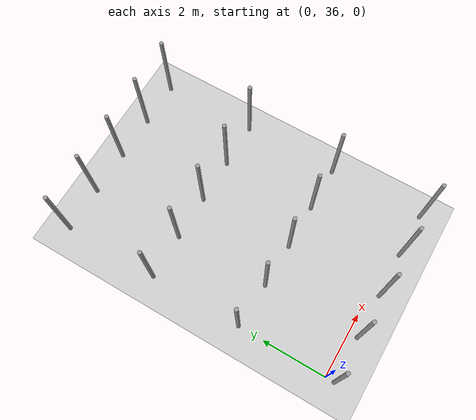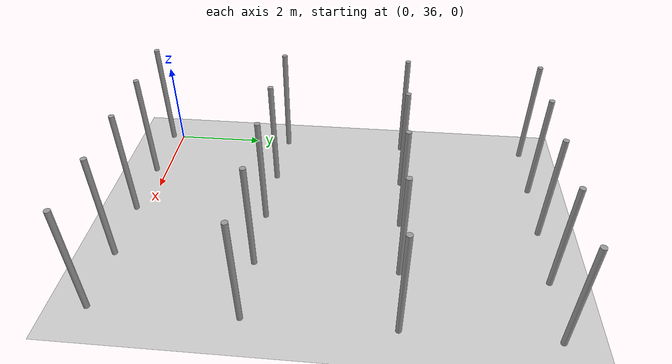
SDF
<sdf version="1.6">
 <world name="default">
  <model name="ground_plane">
   <static>1</static>
   <link name="link">
    <collision name="collision">
     <geometry><plane><normal>0 0 1</normal><size>100 100</size></plane></geometry>
     <surface><friction><ode><mu>100</mu><mu2>50</mu2></ode></friction></surface>
    </collision>
    <visual name="visual">
     <cast_shadows>0</cast_shadows>
     <geometry><plane><normal>0 0 1</normal><size>100 100</size></plane></geometry>
     <material>
      <script><uri>file://media/materials/scripts/gazebo.material</uri><name>Gazebo/Grey</name></script>
     </material>
    </visual>
   </link>
  </model>
  <model name="pole_58">
   <link name="link_0">
    <inertial>
     <mass>0.0364582</mass>
     <inertia>
      <ixx>0.00312124</ixx>
      <ixy>0</ixy>
      <ixz>0</ixz>
      <iyy>0.00312124</iyy>
      <iyz>0</iyz>
      <izz>0.00016615</izz>
     </inertia>
    </inertial>
    <visual name="visual">
     <geometry><cylinder><radius>0.06</radius><length>2.5</length></cylinder></geometry>
     <material>
      <lighting>1</lighting>
      <script><uri>file://media/materials/scripts/gazebo.material</uri><name>Gazebo/Grey</name></script>
      <ambient>0.3 0.3 0.3 1</ambient>
      <diffuse>0.7 0.7 0.7 1</diffuse>
      <specular>0.01 0.01 0.01 1</specular>
      <emissive>0 0 0 1</emissive>
      <shader type="vertex"><normal_map>__default__</normal_map></shader>
     </material>
    </visual>
    <collision name="collision">
     <geometry><cylinder><radius>0.06</radius><length>2.5</length></cylinder></geometry>
     <surface>
      <friction>
       <ode><mu>1</mu><mu2>1</mu2><fdir1>0 0 0</fdir1><slip1>0</slip1><slip2>0</slip2></ode>
       <torsional>
        <coefficient>1</coefficient>
        <patch_radius>0</patch_radius>
        <surface_radius>0</surface_radius>
        <use_patch_radius>1</use_patch_radius>
        <ode><slip>0</slip></ode>
       </torsional>
      </friction>
      <bounce><restitution_coefficient>0</restitution_coefficient><threshold>1e+06</threshold></bounce>
      <contact>
       <collide_without_contact>0</collide_without_contact>
       <collide_without_contact_bitmask>1</collide_without_contact_bitmask>
       <collide_bitmask>1</collide_bitmask>
       <ode>
        <soft_cfm>0</soft_cfm>
        <soft_erp>0.2</soft_erp>
        <kp>1e+13</kp>
        <kd>1</kd>
        <max_vel>0.01</max_vel>
        <min_depth>0</min_depth>
       </ode>
       <bullet>
        <split_impulse>1</split_impulse>
        <split_impulse_penetration_threshold>-0.01</split_impulse_penetration_threshold>
        <soft_cfm>0</soft_cfm>
        <soft_erp>0.2</soft_erp>
        <kp>1e+13</kp>
        <kd>1</kd>
       </bullet>
      </contact>
     </surface>
    </collision>
   </link>
   <static>0</static>
   <pose>0.000145 35.741 1.24999 0 1e-06 -0.011915</pose>
  </model>
  <model name="pole_59">
   <link name="link_0">
    <inertial>
     <mass>0.0364582</mass>
     <inertia>
      <ixx>0.00312124</ixx>
      <ixy>0</ixy>
      <ixz>0</ixz>
      <iyy>0.00312124</iyy>
      <iyz>0</iyz>
      <izz>0.00016615</izz>
     </inertia>
    </inertial>
    <visual name="visual">
     <geometry><cylinder><radius>0.06</radius><length>2.5</length></cylinder></geometry>
     <material>
      <lighting>1</lighting>
      <script><uri>file://media/materials/scripts/gazebo.material</uri><name>Gazebo/Grey</name></script>
      <ambient>0.3 0.3 0.3 1</ambient>
      <diffuse>0.7 0.7 0.7 1</diffuse>
      <specular>0.01 0.01 0.01 1</specular>
      <emissive>0 0 0 1</emissive>
      <shader type="vertex"><normal_map>__default__</normal_map></shader>
     </material>
    </visual>
    <collision name="collision">
     <geometry><cylinder><radius>0.06</radius><length>2.5</length></cylinder></geometry>
     <surface>
      <friction>
       <ode><mu>1</mu><mu2>1</mu2><fdir1>0 0 0</fdir1><slip1>0</slip1><slip2>0</slip2></ode>
       <torsional>
        <coefficient>1</coefficient>
        <patch_radius>0</patch_radius>
        <surface_radius>0</surface_radius>
        <use_patch_radius>1</use_patch_radius>
        <ode><slip>0</slip></ode>
       </torsional>
      </friction>
      <bounce><restitution_coefficient>0</restitution_coefficient><threshold>1e+06</threshold></bounce>
      <contact>
       <collide_without_contact>0</collide_without_contact>
       <collide_without_contact_bitmask>1</collide_without_contact_bitmask>
       <collide_bitmask>1</collide_bitmask>
       <ode>
        <soft_cfm>0</soft_cfm>
        <soft_erp>0.2</soft_erp>
        <kp>1e+13</kp>
        <kd>1</kd>
        <max_vel>0.01</max_vel>
        <min_depth>0</min_depth>
       </ode>
       <bullet>
        <split_impulse>1</split_impulse>
        <split_impulse_penetration_threshold>-0.01</split_impulse_penetration_threshold>
        <soft_cfm>0</soft_cfm>
        <soft_erp>0.2</soft_erp>
        <kp>1e+13</kp>
        <kd>1</kd>
       </bullet>
      </contact>
     </surface>
    </collision>
   </link>
   <static>0</static>
   <pose>1.40914 35.7372 1.25 0 2e-06 0.097629</pose>
  </model>
  <model name="pole_60">
   <link name="link_0">
    <inertial>
     <mass>0.0364582</mass>
     <inertia>
      <ixx>0.00312124</ixx>
      <ixy>0</ixy>
      <ixz>0</ixz>
      <iyy>0.00312124</iyy>
      <iyz>0</iyz>
      <izz>0.00016615</izz>
     </inertia>
    </inertial>
    <visual name="visual">
     <geometry><cylinder><radius>0.06</radius><length>2.5</length></cylinder></geometry>
     <material>
      <lighting>1</lighting>
      <script><uri>file://media/materials/scripts/gazebo.material</uri><name>Gazebo/Grey</name></script>
      <ambient>0.3 0.3 0.3 1</ambient>
      <diffuse>0.7 0.7 0.7 1</diffuse>
      <specular>0.01 0.01 0.01 1</specular>
      <emissive>0 0 0 1</emissive>
      <shader type="vertex"><normal_map>__default__</normal_map></shader>
     </material>
    </visual>
    <collision name="collision">
     <geometry><cylinder><radius>0.06</radius><length>2.5</length></cylinder></geometry>
     <surface>
      <friction>
       <ode><mu>1</mu><mu2>1</mu2><fdir1>0 0 0</fdir1><slip1>0</slip1><slip2>0</slip2></ode>
       <torsional>
        <coefficient>1</coefficient>
        <patch_radius>0</patch_radius>
        <surface_radius>0</surface_radius>
        <use_patch_radius>1</use_patch_radius>
        <ode><slip>0</slip></ode>
       </torsional>
      </friction>
      <bounce><restitution_coefficient>0</restitution_coefficient><threshold>1e+06</threshold></bounce>
      <contact>
       <collide_without_contact>0</collide_without_contact>
       <collide_without_contact_bitmask>1</collide_without_contact_bitmask>
       <collide_bitmask>1</collide_bitmask>
       <ode>
        <soft_cfm>0</soft_cfm>
        <soft_erp>0.2</soft_erp>
        <kp>1e+13</kp>
        <kd>1</kd>
        <max_vel>0.01</max_vel>
        <min_depth>0</min_depth>
       </ode>
       <bullet>
        <split_impulse>1</split_impulse>
        <split_impulse_penetration_threshold>-0.01</split_impulse_penetration_threshold>
        <soft_cfm>0</soft_cfm>
        <soft_erp>0.2</soft_erp>
        <kp>1e+13</kp>
        <kd>1</kd>
       </bullet>
      </contact>
     </surface>
    </collision>
   </link>
   <static>0</static>
   <pose>2.80017 35.7211 1.25 -0 -1e-06 -0.014316</pose>
  </model>
  <model name="pole_61">
   <link name="link_0">
    <inertial>
     <mass>0.0364582</mass>
     <inertia>
      <ixx>0.00312124</ixx>
      <ixy>0</ixy>
      <ixz>0</ixz>
      <iyy>0.00312124</iyy>
      <iyz>0</iyz>
      <izz>0.00016615</izz>
     </inertia>
    </inertial>
    <visual name="visual">
     <geometry><cylinder><radius>0.06</radius><length>2.5</length></cylinder></geometry>
     <material>
      <lighting>1</lighting>
      <script><uri>file://media/materials/scripts/gazebo.material</uri><name>Gazebo/Grey</name></script>
      <ambient>0.3 0.3 0.3 1</ambient>
      <diffuse>0.7 0.7 0.7 1</diffuse>
      <specular>0.01 0.01 0.01 1</specular>
      <emissive>0 0 0 1</emissive>
      <shader type="vertex"><normal_map>__default__</normal_map></shader>
     </material>
    </visual>
    <collision name="collision">
     <geometry><cylinder><radius>0.06</radius><length>2.5</length></cylinder></geometry>
     <surface>
      <friction>
       <ode><mu>1</mu><mu2>1</mu2><fdir1>0 0 0</fdir1><slip1>0</slip1><slip2>0</slip2></ode>
       <torsional>
        <coefficient>1</coefficient>
        <patch_radius>0</patch_radius>
        <surface_radius>0</surface_radius>
        <use_patch_radius>1</use_patch_radius>
        <ode><slip>0</slip></ode>
       </torsional>
      </friction>
      <bounce><restitution_coefficient>0</restitution_coefficient><threshold>1e+06</threshold></bounce>
      <contact>
       <collide_without_contact>0</collide_without_contact>
       <collide_without_contact_bitmask>1</collide_without_contact_bitmask>
       <collide_bitmask>1</collide_bitmask>
       <ode>
        <soft_cfm>0</soft_cfm>
        <soft_erp>0.2</soft_erp>
        <kp>1e+13</kp>
        <kd>1</kd>
        <max_vel>0.01</max_vel>
        <min_depth>0</min_depth>
       </ode>
       <bullet>
        <split_impulse>1</split_impulse>
        <split_impulse_penetration_threshold>-0.01</split_impulse_penetration_threshold>
        <soft_cfm>0</soft_cfm>
        <soft_erp>0.2</soft_erp>
        <kp>1e+13</kp>
        <kd>1</kd>
       </bullet>
      </contact>
     </surface>
    </collision>
   </link>
   <static>0</static>
   <pose>4.20055 35.7412 1.25 -1e-06 1e-06 -0.001491</pose>
  </model>
  <model name="pole_62">
   <link name="link_0">
    <inertial>
     <mass>0.0364582</mass>
     <inertia>
      <ixx>0.00312124</ixx>
      <ixy>0</ixy>
      <ixz>0</ixz>
      <iyy>0.00312124</iyy>
      <iyz>0</iyz>
      <izz>0.00016615</izz>
     </inertia>
    </inertial>
    <visual name="visual">
     <geometry><cylinder><radius>0.06</radius><length>2.5</length></cylinder></geometry>
     <material>
      <lighting>1</lighting>
      <script><uri>file://media/materials/scripts/gazebo.material</uri><name>Gazebo/Grey</name></script>
      <ambient>0.3 0.3 0.3 1</ambient>
      <diffuse>0.7 0.7 0.7 1</diffuse>
      <specular>0.01 0.01 0.01 1</specular>
      <emissive>0 0 0 1</emissive>
      <shader type="vertex"><normal_map>__default__</normal_map></shader>
     </material>
    </visual>
    <collision name="collision">
     <geometry><cylinder><radius>0.06</radius><length>2.5</length></cylinder></geometry>
     <surface>
      <friction>
       <ode><mu>1</mu><mu2>1</mu2><fdir1>0 0 0</fdir1><slip1>0</slip1><slip2>0</slip2></ode>
       <torsional>
        <coefficient>1</coefficient>
        <patch_radius>0</patch_radius>
        <surface_radius>0</surface_radius>
        <use_patch_radius>1</use_patch_radius>
        <ode><slip>0</slip></ode>
       </torsional>
      </friction>
      <bounce><restitution_coefficient>0</restitution_coefficient><threshold>1e+06</threshold></bounce>
      <contact>
       <collide_without_contact>0</collide_without_contact>
       <collide_without_contact_bitmask>1</collide_without_contact_bitmask>
       <collide_bitmask>1</collide_bitmask>
       <ode>
        <soft_cfm>0</soft_cfm>
        <soft_erp>0.2</soft_erp>
        <kp>1e+13</kp>
        <kd>1</kd>
        <max_vel>0.01</max_vel>
        <min_depth>0</min_depth>
       </ode>
       <bullet>
        <split_impulse>1</split_impulse>
        <split_impulse_penetration_threshold>-0.01</split_impulse_penetration_threshold>
        <soft_cfm>0</soft_cfm>
        <soft_erp>0.2</soft_erp>
        <kp>1e+13</kp>
        <kd>1</kd>
       </bullet>
      </contact>
     </surface>
    </collision>
   </link>
   <static>0</static>
   <pose>5.60013 35.7209 1.24999 -1e-06 1e-06 -0.011618</pose>
  </model>
  <model name="pole_63">
   <link name="link_0">
    <inertial>
     <mass>0.0364582</mass>
     <inertia>
      <ixx>0.00312124</ixx>
      <ixy>0</ixy>
      <ixz>0</ixz>
      <iyy>0.00312124</iyy>
      <iyz>0</iyz>
      <izz>0.00016615</izz>
     </inertia>
    </inertial>
    <visual name="visual">
     <geometry><cylinder><radius>0.06</radius><length>2.5</length></cylinder></geometry>
     <material>
      <lighting>1</lighting>
      <script><uri>file://media/materials/scripts/gazebo.material</uri><name>Gazebo/Grey</name></script>
      <ambient>0.3 0.3 0.3 1</ambient>
      <diffuse>0.7 0.7 0.7 1</diffuse>
      <specular>0.01 0.01 0.01 1</specular>
      <emissive>0 0 0 1</emissive>
      <shader type="vertex"><normal_map>__default__</normal_map></shader>
     </material>
    </visual>
    <collision name="collision">
     <geometry><cylinder><radius>0.06</radius><length>2.5</length></cylinder></geometry>
     <surface>
      <friction>
       <ode><mu>1</mu><mu2>1</mu2><fdir1>0 0 0</fdir1><slip1>0</slip1><slip2>0</slip2></ode>
       <torsional>
        <coefficient>1</coefficient>
        <patch_radius>0</patch_radius>
        <surface_radius>0</surface_radius>
        <use_patch_radius>1</use_patch_radius>
        <ode><slip>0</slip></ode>
       </torsional>
      </friction>
      <bounce><restitution_coefficient>0</restitution_coefficient><threshold>1e+06</threshold></bounce>
      <contact>
       <collide_without_contact>0</collide_without_contact>
       <collide_without_contact_bitmask>1</collide_without_contact_bitmask>
       <collide_bitmask>1</collide_bitmask>
       <ode>
        <soft_cfm>0</soft_cfm>
        <soft_erp>0.2</soft_erp>
        <kp>1e+13</kp>
        <kd>1</kd>
        <max_vel>0.01</max_vel>
        <min_depth>0</min_depth>
       </ode>
       <bullet>
        <split_impulse>1</split_impulse>
        <split_impulse_penetration_threshold>-0.01</split_impulse_penetration_threshold>
        <soft_cfm>0</soft_cfm>
        <soft_erp>0.2</soft_erp>
        <kp>1e+13</kp>
        <kd>1</kd>
       </bullet>
      </contact>
     </surface>
    </collision>
   </link>
   <static>0</static>
   <pose>-0.006738 38.8032 1.2507 -0.001142 -0.01346 -0.34916</pose>
  </model>
  <model name="pole_64">
   <link name="link_0">
    <inertial>
     <mass>0.0364582</mass>
     <inertia>
      <ixx>0.00312124</ixx>
      <ixy>0</ixy>
      <ixz>0</ixz>
      <iyy>0.00312124</iyy>
      <iyz>0</iyz>
      <izz>0.00016615</izz>
     </inertia>
    </inertial>
    <visual name="visual">
     <geometry><cylinder><radius>0.06</radius><length>2.5</length></cylinder></geometry>
     <material>
      <lighting>1</lighting>
      <script><uri>file://media/materials/scripts/gazebo.material</uri><name>Gazebo/Grey</name></script>
      <ambient>0.3 0.3 0.3 1</ambient>
      <diffuse>0.7 0.7 0.7 1</diffuse>
      <specular>0.01 0.01 0.01 1</specular>
      <emissive>0 0 0 1</emissive>
      <shader type="vertex"><normal_map>__default__</normal_map></shader>
     </material>
    </visual>
    <collision name="collision">
     <geometry><cylinder><radius>0.06</radius><length>2.5</length></cylinder></geometry>
     <surface>
      <friction>
       <ode><mu>1</mu><mu2>1</mu2><fdir1>0 0 0</fdir1><slip1>0</slip1><slip2>0</slip2></ode>
       <torsional>
        <coefficient>1</coefficient>
        <patch_radius>0</patch_radius>
        <surface_radius>0</surface_radius>
        <use_patch_radius>1</use_patch_radius>
        <ode><slip>0</slip></ode>
       </torsional>
      </friction>
      <bounce><restitution_coefficient>0</restitution_coefficient><threshold>1e+06</threshold></bounce>
      <contact>
       <collide_without_contact>0</collide_without_contact>
       <collide_without_contact_bitmask>1</collide_without_contact_bitmask>
       <collide_bitmask>1</collide_bitmask>
       <ode>
        <soft_cfm>0</soft_cfm>
        <soft_erp>0.2</soft_erp>
        <kp>1e+13</kp>
        <kd>1</kd>
        <max_vel>0.01</max_vel>
        <min_depth>0</min_depth>
       </ode>
       <bullet>
        <split_impulse>1</split_impulse>
        <split_impulse_penetration_threshold>-0.01</split_impulse_penetration_threshold>
        <soft_cfm>0</soft_cfm>
        <soft_erp>0.2</soft_erp>
        <kp>1e+13</kp>
        <kd>1</kd>
       </bullet>
      </contact>
     </surface>
    </collision>
   </link>
   <static>0</static>
   <pose>9.3e-05 41.6806 1.24999 0 -1e-06 -0.011945</pose>
  </model>
  <model name="pole_65">
   <link name="link_0">
    <inertial>
     <mass>0.0364582</mass>
     <inertia>
      <ixx>0.00312124</ixx>
      <ixy>0</ixy>
      <ixz>0</ixz>
      <iyy>0.00312124</iyy>
      <iyz>0</iyz>
      <izz>0.00016615</izz>
     </inertia>
    </inertial>
    <visual name="visual">
     <geometry><cylinder><radius>0.06</radius><length>2.5</length></cylinder></geometry>
     <material>
      <lighting>1</lighting>
      <script><uri>file://media/materials/scripts/gazebo.material</uri><name>Gazebo/Grey</name></script>
      <ambient>0.3 0.3 0.3 1</ambient>
      <diffuse>0.7 0.7 0.7 1</diffuse>
      <specular>0.01 0.01 0.01 1</specular>
      <emissive>0 0 0 1</emissive>
      <shader type="vertex"><normal_map>__default__</normal_map></shader>
     </material>
    </visual>
    <collision name="collision">
     <geometry><cylinder><radius>0.06</radius><length>2.5</length></cylinder></geometry>
     <surface>
      <friction>
       <ode><mu>1</mu><mu2>1</mu2><fdir1>0 0 0</fdir1><slip1>0</slip1><slip2>0</slip2></ode>
       <torsional>
        <coefficient>1</coefficient>
        <patch_radius>0</patch_radius>
        <surface_radius>0</surface_radius>
        <use_patch_radius>1</use_patch_radius>
        <ode><slip>0</slip></ode>
       </torsional>
      </friction>
      <bounce><restitution_coefficient>0</restitution_coefficient><threshold>1e+06</threshold></bounce>
      <contact>
       <collide_without_contact>0</collide_without_contact>
       <collide_without_contact_bitmask>1</collide_without_contact_bitmask>
       <collide_bitmask>1</collide_bitmask>
       <ode>
        <soft_cfm>0</soft_cfm>
        <soft_erp>0.2</soft_erp>
        <kp>1e+13</kp>
        <kd>1</kd>
        <max_vel>0.01</max_vel>
        <min_depth>0</min_depth>
       </ode>
       <bullet>
        <split_impulse>1</split_impulse>
        <split_impulse_penetration_threshold>-0.01</split_impulse_penetration_threshold>
        <soft_cfm>0</soft_cfm>
        <soft_erp>0.2</soft_erp>
        <kp>1e+13</kp>
        <kd>1</kd>
       </bullet>
      </contact>
     </surface>
    </collision>
   </link>
   <static>0</static>
   <pose>1.39976 41.6806 1.24999 -1e-06 -2e-06 -0.075097</pose>
  </model>
  <model name="pole_66">
   <link name="link_0">
    <inertial>
     <mass>0.0364582</mass>
     <inertia>
      <ixx>0.00312124</ixx>
      <ixy>0</ixy>
      <ixz>0</ixz>
      <iyy>0.00312124</iyy>
      <iyz>0</iyz>
      <izz>0.00016615</izz>
     </inertia>
    </inertial>
    <visual name="visual">
     <geometry><cylinder><radius>0.06</radius><length>2.5</length></cylinder></geometry>
     <material>
      <lighting>1</lighting>
      <script><uri>file://media/materials/scripts/gazebo.material</uri><name>Gazebo/Grey</name></script>
      <ambient>0.3 0.3 0.3 1</ambient>
      <diffuse>0.7 0.7 0.7 1</diffuse>
      <specular>0.01 0.01 0.01 1</specular>
      <emissive>0 0 0 1</emissive>
      <shader type="vertex"><normal_map>__default__</normal_map></shader>
     </material>
    </visual>
    <collision name="collision">
     <geometry><cylinder><radius>0.06</radius><length>2.5</length></cylinder></geometry>
     <surface>
      <friction>
       <ode><mu>1</mu><mu2>1</mu2><fdir1>0 0 0</fdir1><slip1>0</slip1><slip2>0</slip2></ode>
       <torsional>
        <coefficient>1</coefficient>
        <patch_radius>0</patch_radius>
        <surface_radius>0</surface_radius>
        <use_patch_radius>1</use_patch_radius>
        <ode><slip>0</slip></ode>
       </torsional>
      </friction>
      <bounce><restitution_coefficient>0</restitution_coefficient><threshold>1e+06</threshold></bounce>
      <contact>
       <collide_without_contact>0</collide_without_contact>
       <collide_without_contact_bitmask>1</collide_without_contact_bitmask>
       <collide_bitmask>1</collide_bitmask>
       <ode>
        <soft_cfm>0</soft_cfm>
        <soft_erp>0.2</soft_erp>
        <kp>1e+13</kp>
        <kd>1</kd>
        <max_vel>0.01</max_vel>
        <min_depth>0</min_depth>
       </ode>
       <bullet>
        <split_impulse>1</split_impulse>
        <split_impulse_penetration_threshold>-0.01</split_impulse_penetration_threshold>
        <soft_cfm>0</soft_cfm>
        <soft_erp>0.2</soft_erp>
        <kp>1e+13</kp>
        <kd>1</kd>
       </bullet>
      </contact>
     </surface>
    </collision>
   </link>
   <static>0</static>
   <pose>1.40922 38.7199 1.24999 -1e-06 -1e-06 -0.009136</pose>
  </model>
  <model name="pole_67">
   <link name="link_0">
    <inertial>
     <mass>0.0364582</mass>
     <inertia>
      <ixx>0.00312124</ixx>
      <ixy>0</ixy>
      <ixz>0</ixz>
      <iyy>0.00312124</iyy>
      <iyz>0</iyz>
      <izz>0.00016615</izz>
     </inertia>
    </inertial>
    <visual name="visual">
     <geometry><cylinder><radius>0.06</radius><length>2.5</length></cylinder></geometry>
     <material>
      <lighting>1</lighting>
      <script><uri>file://media/materials/scripts/gazebo.material</uri><name>Gazebo/Grey</name></script>
      <ambient>0.3 0.3 0.3 1</ambient>
      <diffuse>0.7 0.7 0.7 1</diffuse>
      <specular>0.01 0.01 0.01 1</specular>
      <emissive>0 0 0 1</emissive>
      <shader type="vertex"><normal_map>__default__</normal_map></shader>
     </material>
    </visual>
    <collision name="collision">
     <geometry><cylinder><radius>0.06</radius><length>2.5</length></cylinder></geometry>
     <surface>
      <friction>
       <ode><mu>1</mu><mu2>1</mu2><fdir1>0 0 0</fdir1><slip1>0</slip1><slip2>0</slip2></ode>
       <torsional>
        <coefficient>1</coefficient>
        <patch_radius>0</patch_radius>
        <surface_radius>0</surface_radius>
        <use_patch_radius>1</use_patch_radius>
        <ode><slip>0</slip></ode>
       </torsional>
      </friction>
      <bounce><restitution_coefficient>0</restitution_coefficient><threshold>1e+06</threshold></bounce>
      <contact>
       <collide_without_contact>0</collide_without_contact>
       <collide_without_contact_bitmask>1</collide_without_contact_bitmask>
       <collide_bitmask>1</collide_bitmask>
       <ode>
        <soft_cfm>0</soft_cfm>
        <soft_erp>0.2</soft_erp>
        <kp>1e+13</kp>
        <kd>1</kd>
        <max_vel>0.01</max_vel>
        <min_depth>0</min_depth>
       </ode>
       <bullet>
        <split_impulse>1</split_impulse>
        <split_impulse_penetration_threshold>-0.01</split_impulse_penetration_threshold>
        <soft_cfm>0</soft_cfm>
        <soft_erp>0.2</soft_erp>
        <kp>1e+13</kp>
        <kd>1</kd>
       </bullet>
      </contact>
     </surface>
    </collision>
   </link>
   <static>0</static>
   <pose>4.20006 41.6805 1.24999 0 -1e-06 -0.009459</pose>
  </model>
  <model name="pole_68">
   <link name="link_0">
    <inertial>
     <mass>0.0364582</mass>
     <inertia>
      <ixx>0.00312124</ixx>
      <ixy>0</ixy>
      <ixz>0</ixz>
      <iyy>0.00312124</iyy>
      <iyz>0</iyz>
      <izz>0.00016615</izz>
     </inertia>
    </inertial>
    <visual name="visual">
     <geometry><cylinder><radius>0.06</radius><length>2.5</length></cylinder></geometry>
     <material>
      <lighting>1</lighting>
      <script><uri>file://media/materials/scripts/gazebo.material</uri><name>Gazebo/Grey</name></script>
      <ambient>0.3 0.3 0.3 1</ambient>
      <diffuse>0.7 0.7 0.7 1</diffuse>
      <specular>0.01 0.01 0.01 1</specular>
      <emissive>0 0 0 1</emissive>
      <shader type="vertex"><normal_map>__default__</normal_map></shader>
     </material>
    </visual>
    <collision name="collision">
     <geometry><cylinder><radius>0.06</radius><length>2.5</length></cylinder></geometry>
     <surface>
      <friction>
       <ode><mu>1</mu><mu2>1</mu2><fdir1>0 0 0</fdir1><slip1>0</slip1><slip2>0</slip2></ode>
       <torsional>
        <coefficient>1</coefficient>
        <patch_radius>0</patch_radius>
        <surface_radius>0</surface_radius>
        <use_patch_radius>1</use_patch_radius>
        <ode><slip>0</slip></ode>
       </torsional>
      </friction>
      <bounce><restitution_coefficient>0</restitution_coefficient><threshold>1e+06</threshold></bounce>
      <contact>
       <collide_without_contact>0</collide_without_contact>
       <collide_without_contact_bitmask>1</collide_without_contact_bitmask>
       <collide_bitmask>1</collide_bitmask>
       <ode>
        <soft_cfm>0</soft_cfm>
        <soft_erp>0.2</soft_erp>
        <kp>1e+13</kp>
        <kd>1</kd>
        <max_vel>0.01</max_vel>
        <min_depth>0</min_depth>
       </ode>
       <bullet>
        <split_impulse>1</split_impulse>
        <split_impulse_penetration_threshold>-0.01</split_impulse_penetration_threshold>
        <soft_cfm>0</soft_cfm>
        <soft_erp>0.2</soft_erp>
        <kp>1e+13</kp>
        <kd>1</kd>
       </bullet>
      </contact>
     </surface>
    </collision>
   </link>
   <static>0</static>
   <pose>2.80003 41.6805 1.24999 0 -1e-06 -0.006837</pose>
  </model>
  <model name="pole_69">
   <link name="link_0">
    <inertial>
     <mass>0.0364582</mass>
     <inertia>
      <ixx>0.00312124</ixx>
      <ixy>0</ixy>
      <ixz>0</ixz>
      <iyy>0.00312124</iyy>
      <iyz>0</iyz>
      <izz>0.00016615</izz>
     </inertia>
    </inertial>
    <visual name="visual">
     <geometry><cylinder><radius>0.06</radius><length>2.5</length></cylinder></geometry>
     <material>
      <lighting>1</lighting>
      <script><uri>file://media/materials/scripts/gazebo.material</uri><name>Gazebo/Grey</name></script>
      <ambient>0.3 0.3 0.3 1</ambient>
      <diffuse>0.7 0.7 0.7 1</diffuse>
      <specular>0.01 0.01 0.01 1</specular>
      <emissive>0 0 0 1</emissive>
      <shader type="vertex"><normal_map>__default__</normal_map></shader>
     </material>
    </visual>
    <collision name="collision">
     <geometry><cylinder><radius>0.06</radius><length>2.5</length></cylinder></geometry>
     <surface>
      <friction>
       <ode><mu>1</mu><mu2>1</mu2><fdir1>0 0 0</fdir1><slip1>0</slip1><slip2>0</slip2></ode>
       <torsional>
        <coefficient>1</coefficient>
        <patch_radius>0</patch_radius>
        <surface_radius>0</surface_radius>
        <use_patch_radius>1</use_patch_radius>
        <ode><slip>0</slip></ode>
       </torsional>
      </friction>
      <bounce><restitution_coefficient>0</restitution_coefficient><threshold>1e+06</threshold></bounce>
      <contact>
       <collide_without_contact>0</collide_without_contact>
       <collide_without_contact_bitmask>1</collide_without_contact_bitmask>
       <collide_bitmask>1</collide_bitmask>
       <ode>
        <soft_cfm>0</soft_cfm>
        <soft_erp>0.2</soft_erp>
        <kp>1e+13</kp>
        <kd>1</kd>
        <max_vel>0.01</max_vel>
        <min_depth>0</min_depth>
       </ode>
       <bullet>
        <split_impulse>1</split_impulse>
        <split_impulse_penetration_threshold>-0.01</split_impulse_penetration_threshold>
        <soft_cfm>0</soft_cfm>
        <soft_erp>0.2</soft_erp>
        <kp>1e+13</kp>
        <kd>1</kd>
       </bullet>
      </contact>
     </surface>
    </collision>
   </link>
   <static>0</static>
   <pose>1.40007 44.6604 1.24999 -1e-06 -1e-06 -0.009086</pose>
  </model>
  <model name="pole_70">
   <link name="link_0">
    <inertial>
     <mass>0.0364582</mass>
     <inertia>
      <ixx>0.00312124</ixx>
      <ixy>0</ixy>
      <ixz>0</ixz>
      <iyy>0.00312124</iyy>
      <iyz>0</iyz>
      <izz>0.00016615</izz>
     </inertia>
    </inertial>
    <visual name="visual">
     <geometry><cylinder><radius>0.06</radius><length>2.5</length></cylinder></geometry>
     <material>
      <lighting>1</lighting>
      <script><uri>file://media/materials/scripts/gazebo.material</uri><name>Gazebo/Grey</name></script>
      <ambient>0.3 0.3 0.3 1</ambient>
      <diffuse>0.7 0.7 0.7 1</diffuse>
      <specular>0.01 0.01 0.01 1</specular>
      <emissive>0 0 0 1</emissive>
      <shader type="vertex"><normal_map>__default__</normal_map></shader>
     </material>
    </visual>
    <collision name="collision">
     <geometry><cylinder><radius>0.06</radius><length>2.5</length></cylinder></geometry>
     <surface>
      <friction>
       <ode><mu>1</mu><mu2>1</mu2><fdir1>0 0 0</fdir1><slip1>0</slip1><slip2>0</slip2></ode>
       <torsional>
        <coefficient>1</coefficient>
        <patch_radius>0</patch_radius>
        <surface_radius>0</surface_radius>
        <use_patch_radius>1</use_patch_radius>
        <ode><slip>0</slip></ode>
       </torsional>
      </friction>
      <bounce><restitution_coefficient>0</restitution_coefficient><threshold>1e+06</threshold></bounce>
      <contact>
       <collide_without_contact>0</collide_without_contact>
       <collide_without_contact_bitmask>1</collide_without_contact_bitmask>
       <collide_bitmask>1</collide_bitmask>
       <ode>
        <soft_cfm>0</soft_cfm>
        <soft_erp>0.2</soft_erp>
        <kp>1e+13</kp>
        <kd>1</kd>
        <max_vel>0.01</max_vel>
        <min_depth>0</min_depth>
       </ode>
       <bullet>
        <split_impulse>1</split_impulse>
        <split_impulse_penetration_threshold>-0.01</split_impulse_penetration_threshold>
        <soft_cfm>0</soft_cfm>
        <soft_erp>0.2</soft_erp>
        <kp>1e+13</kp>
        <kd>1</kd>
       </bullet>
      </contact>
     </surface>
    </collision>
   </link>
   <static>0</static>
   <pose>5.60002 44.6601 1.25 -1e-06 -1e-06 -0.006328</pose>
  </model>
  <model name="pole_71">
   <link name="link_0">
    <inertial>
     <mass>0.0364582</mass>
     <inertia>
      <ixx>0.00312124</ixx>
      <ixy>0</ixy>
      <ixz>0</ixz>
      <iyy>0.00312124</iyy>
      <iyz>0</iyz>
      <izz>0.00016615</izz>
     </inertia>
    </inertial>
    <visual name="visual">
     <geometry><cylinder><radius>0.06</radius><length>2.5</length></cylinder></geometry>
     <material>
      <lighting>1</lighting>
      <script><uri>file://media/materials/scripts/gazebo.material</uri><name>Gazebo/Grey</name></script>
      <ambient>0.3 0.3 0.3 1</ambient>
      <diffuse>0.7 0.7 0.7 1</diffuse>
      <specular>0.01 0.01 0.01 1</specular>
      <emissive>0 0 0 1</emissive>
      <shader type="vertex"><normal_map>__default__</normal_map></shader>
     </material>
    </visual>
    <collision name="collision">
     <geometry><cylinder><radius>0.06</radius><length>2.5</length></cylinder></geometry>
     <surface>
      <friction>
       <ode><mu>1</mu><mu2>1</mu2><fdir1>0 0 0</fdir1><slip1>0</slip1><slip2>0</slip2></ode>
       <torsional>
        <coefficient>1</coefficient>
        <patch_radius>0</patch_radius>
        <surface_radius>0</surface_radius>
        <use_patch_radius>1</use_patch_radius>
        <ode><slip>0</slip></ode>
       </torsional>
      </friction>
      <bounce><restitution_coefficient>0</restitution_coefficient><threshold>1e+06</threshold></bounce>
      <contact>
       <collide_without_contact>0</collide_without_contact>
       <collide_without_contact_bitmask>1</collide_without_contact_bitmask>
       <collide_bitmask>1</collide_bitmask>
       <ode>
        <soft_cfm>0</soft_cfm>
        <soft_erp>0.2</soft_erp>
        <kp>1e+13</kp>
        <kd>1</kd>
        <max_vel>0.01</max_vel>
        <min_depth>0</min_depth>
       </ode>
       <bullet>
        <split_impulse>1</split_impulse>
        <split_impulse_penetration_threshold>-0.01</split_impulse_penetration_threshold>
        <soft_cfm>0</soft_cfm>
        <soft_erp>0.2</soft_erp>
        <kp>1e+13</kp>
        <kd>1</kd>
       </bullet>
      </contact>
     </surface>
    </collision>
   </link>
   <static>0</static>
   <pose>4.19752 44.6584 1.24999 -0 2e-06 -0.022224</pose>
  </model>
  <model name="pole_72">
   <link name="link_0">
    <inertial>
     <mass>0.0364582</mass>
     <inertia>
      <ixx>0.00312124</ixx>
      <ixy>0</ixy>
      <ixz>0</ixz>
      <iyy>0.00312124</iyy>
      <iyz>0</iyz>
      <izz>0.00016615</izz>
     </inertia>
    </inertial>
    <visual name="visual">
     <geometry><cylinder><radius>0.06</radius><length>2.5</length></cylinder></geometry>
     <material>
      <lighting>1</lighting>
      <script><uri>file://media/materials/scripts/gazebo.material</uri><name>Gazebo/Grey</name></script>
      <ambient>0.3 0.3 0.3 1</ambient>
      <diffuse>0.7 0.7 0.7 1</diffuse>
      <specular>0.01 0.01 0.01 1</specular>
      <emissive>0 0 0 1</emissive>
      <shader type="vertex"><normal_map>__default__</normal_map></shader>
     </material>
    </visual>
    <collision name="collision">
     <geometry><cylinder><radius>0.06</radius><length>2.5</length></cylinder></geometry>
     <surface>
      <friction>
       <ode><mu>1</mu><mu2>1</mu2><fdir1>0 0 0</fdir1><slip1>0</slip1><slip2>0</slip2></ode>
       <torsional>
        <coefficient>1</coefficient>
        <patch_radius>0</patch_radius>
        <surface_radius>0</surface_radius>
        <use_patch_radius>1</use_patch_radius>
        <ode><slip>0</slip></ode>
       </torsional>
      </friction>
      <bounce><restitution_coefficient>0</restitution_coefficient><threshold>1e+06</threshold></bounce>
      <contact>
       <collide_without_contact>0</collide_without_contact>
       <collide_without_contact_bitmask>1</collide_without_contact_bitmask>
       <collide_bitmask>1</collide_bitmask>
       <ode>
        <soft_cfm>0</soft_cfm>
        <soft_erp>0.2</soft_erp>
        <kp>1e+13</kp>
        <kd>1</kd>
        <max_vel>0.01</max_vel>
        <min_depth>0</min_depth>
       </ode>
       <bullet>
        <split_impulse>1</split_impulse>
        <split_impulse_penetration_threshold>-0.01</split_impulse_penetration_threshold>
        <soft_cfm>0</soft_cfm>
        <soft_erp>0.2</soft_erp>
        <kp>1e+13</kp>
        <kd>1</kd>
       </bullet>
      </contact>
     </surface>
    </collision>
   </link>
   <static>0</static>
   <pose>5.60014 38.7008 1.25 -0 -2e-06 -0.009213</pose>
  </model>
  <model name="pole_74">
   <link name="link_0">
    <inertial>
     <mass>0.0364582</mass>
     <inertia>
      <ixx>0.00312124</ixx>
      <ixy>0</ixy>
      <ixz>0</ixz>
      <iyy>0.00312124</iyy>
      <iyz>0</iyz>
      <izz>0.00016615</izz>
     </inertia>
    </inertial>
    <visual name="visual">
     <geometry><cylinder><radius>0.06</radius><length>2.5</length></cylinder></geometry>
     <material>
      <lighting>1</lighting>
      <script><uri>file://media/materials/scripts/gazebo.material</uri><name>Gazebo/Grey</name></script>
      <ambient>0.3 0.3 0.3 1</ambient>
      <diffuse>0.7 0.7 0.7 1</diffuse>
      <specular>0.01 0.01 0.01 1</specular>
      <emissive>0 0 0 1</emissive>
      <shader type="vertex"><normal_map>__default__</normal_map></shader>
     </material>
    </visual>
    <collision name="collision">
     <geometry><cylinder><radius>0.06</radius><length>2.5</length></cylinder></geometry>
     <surface>
      <friction>
       <ode><mu>1</mu><mu2>1</mu2><fdir1>0 0 0</fdir1><slip1>0</slip1><slip2>0</slip2></ode>
       <torsional>
        <coefficient>1</coefficient>
        <patch_radius>0</patch_radius>
        <surface_radius>0</surface_radius>
        <use_patch_radius>1</use_patch_radius>
        <ode><slip>0</slip></ode>
       </torsional>
      </friction>
      <bounce><restitution_coefficient>0</restitution_coefficient><threshold>1e+06</threshold></bounce>
      <contact>
       <collide_without_contact>0</collide_without_contact>
       <collide_without_contact_bitmask>1</collide_without_contact_bitmask>
       <collide_bitmask>1</collide_bitmask>
       <ode>
        <soft_cfm>0</soft_cfm>
        <soft_erp>0.2</soft_erp>
        <kp>1e+13</kp>
        <kd>1</kd>
        <max_vel>0.01</max_vel>
        <min_depth>0</min_depth>
       </ode>
       <bullet>
        <split_impulse>1</split_impulse>
        <split_impulse_penetration_threshold>-0.01</split_impulse_penetration_threshold>
        <soft_cfm>0</soft_cfm>
        <soft_erp>0.2</soft_erp>
        <kp>1e+13</kp>
        <kd>1</kd>
       </bullet>
      </contact>
     </surface>
    </collision>
   </link>
   <static>0</static>
   <pose>2.79083 38.6954 1.24999 -1e-06 1e-06 -0.165359</pose>
  </model>
  <model name="pole_75">
   <link name="link_0">
    <inertial>
     <mass>0.0364582</mass>
     <inertia>
      <ixx>0.00312124</ixx>
      <ixy>0</ixy>
      <ixz>0</ixz>
      <iyy>0.00312124</iyy>
      <iyz>0</iyz>
      <izz>0.00016615</izz>
     </inertia>
    </inertial>
    <visual name="visual">
     <geometry><cylinder><radius>0.06</radius><length>2.5</length></cylinder></geometry>
     <material>
      <lighting>1</lighting>
      <script><uri>file://media/materials/scripts/gazebo.material</uri><name>Gazebo/Grey</name></script>
      <ambient>0.3 0.3 0.3 1</ambient>
      <diffuse>0.7 0.7 0.7 1</diffuse>
      <specular>0.01 0.01 0.01 1</specular>
      <emissive>0 0 0 1</emissive>
      <shader type="vertex"><normal_map>__default__</normal_map></shader>
     </material>
    </visual>
    <collision name="collision">
     <geometry><cylinder><radius>0.06</radius><length>2.5</length></cylinder></geometry>
     <surface>
      <friction>
       <ode><mu>1</mu><mu2>1</mu2><fdir1>0 0 0</fdir1><slip1>0</slip1><slip2>0</slip2></ode>
       <torsional>
        <coefficient>1</coefficient>
        <patch_radius>0</patch_radius>
        <surface_radius>0</surface_radius>
        <use_patch_radius>1</use_patch_radius>
        <ode><slip>0</slip></ode>
       </torsional>
      </friction>
      <bounce><restitution_coefficient>0</restitution_coefficient><threshold>1e+06</threshold></bounce>
      <contact>
       <collide_without_contact>0</collide_without_contact>
       <collide_without_contact_bitmask>1</collide_without_contact_bitmask>
       <collide_bitmask>1</collide_bitmask>
       <ode>
        <soft_cfm>0</soft_cfm>
        <soft_erp>0.2</soft_erp>
        <kp>1e+13</kp>
        <kd>1</kd>
        <max_vel>0.01</max_vel>
        <min_depth>0</min_depth>
       </ode>
       <bullet>
        <split_impulse>1</split_impulse>
        <split_impulse_penetration_threshold>-0.01</split_impulse_penetration_threshold>
        <soft_cfm>0</soft_cfm>
        <soft_erp>0.2</soft_erp>
        <kp>1e+13</kp>
        <kd>1</kd>
       </bullet>
      </contact>
     </surface>
    </collision>
   </link>
   <static>0</static>
   <pose>4.20042 38.7007 1.24999 -1e-06 -1e-06 0.019912</pose>
  </model>
  <model name="pole_77">
   <link name="link_0">
    <inertial>
     <mass>0.0364582</mass>
     <inertia>
      <ixx>0.00312124</ixx>
      <ixy>0</ixy>
      <ixz>0</ixz>
      <iyy>0.00312124</iyy>
      <iyz>0</iyz>
      <izz>0.00016615</izz>
     </inertia>
    </inertial>
    <visual name="visual">
     <geometry><cylinder><radius>0.06</radius><length>2.5</length></cylinder></geometry>
     <material>
      <lighting>1</lighting>
      <script><uri>file://media/materials/scripts/gazebo.material</uri><name>Gazebo/Grey</name></script>
      <ambient>0.3 0.3 0.3 1</ambient>
      <diffuse>0.7 0.7 0.7 1</diffuse>
      <specular>0.01 0.01 0.01 1</specular>
      <emissive>0 0 0 1</emissive>
      <shader type="vertex"><normal_map>__default__</normal_map></shader>
     </material>
    </visual>
    <collision name="collision">
     <geometry><cylinder><radius>0.06</radius><length>2.5</length></cylinder></geometry>
     <surface>
      <friction>
       <ode><mu>1</mu><mu2>1</mu2><fdir1>0 0 0</fdir1><slip1>0</slip1><slip2>0</slip2></ode>
       <torsional>
        <coefficient>1</coefficient>
        <patch_radius>0</patch_radius>
        <surface_radius>0</surface_radius>
        <use_patch_radius>1</use_patch_radius>
        <ode><slip>0</slip></ode>
       </torsional>
      </friction>
      <bounce><restitution_coefficient>0</restitution_coefficient><threshold>1e+06</threshold></bounce>
      <contact>
       <collide_without_contact>0</collide_without_contact>
       <collide_without_contact_bitmask>1</collide_without_contact_bitmask>
       <collide_bitmask>1</collide_bitmask>
       <ode>
        <soft_cfm>0</soft_cfm>
        <soft_erp>0.2</soft_erp>
        <kp>1e+13</kp>
        <kd>1</kd>
        <max_vel>0.01</max_vel>
        <min_depth>0</min_depth>
       </ode>
       <bullet>
        <split_impulse>1</split_impulse>
        <split_impulse_penetration_threshold>-0.01</split_impulse_penetration_threshold>
        <soft_cfm>0</soft_cfm>
        <soft_erp>0.2</soft_erp>
        <kp>1e+13</kp>
        <kd>1</kd>
       </bullet>
      </contact>
     </surface>
    </collision>
   </link>
   <static>0</static>
   <pose>2.80005 44.6604 1.25 -1e-06 -1e-06 -0.00774</pose>
  </model>
  <model name="pole_78">
   <link name="link_0">
    <inertial>
     <mass>0.0364582</mass>
     <inertia>
      <ixx>0.00312124</ixx>
      <ixy>0</ixy>
      <ixz>0</ixz>
      <iyy>0.00312124</iyy>
      <iyz>0</iyz>
      <izz>0.00016615</izz>
     </inertia>
    </inertial>
    <visual name="visual">
     <geometry><cylinder><radius>0.06</radius><length>2.5</length></cylinder></geometry>
     <material>
      <lighting>1</lighting>
      <script><uri>file://media/materials/scripts/gazebo.material</uri><name>Gazebo/Grey</name></script>
      <ambient>0.3 0.3 0.3 1</ambient>
      <diffuse>0.7 0.7 0.7 1</diffuse>
      <specular>0.01 0.01 0.01 1</specular>
      <emissive>0 0 0 1</emissive>
      <shader type="vertex"><normal_map>__default__</normal_map></shader>
     </material>
    </visual>
    <collision name="collision">
     <geometry><cylinder><radius>0.06</radius><length>2.5</length></cylinder></geometry>
     <surface>
      <friction>
       <ode><mu>1</mu><mu2>1</mu2><fdir1>0 0 0</fdir1><slip1>0</slip1><slip2>0</slip2></ode>
       <torsional>
        <coefficient>1</coefficient>
        <patch_radius>0</patch_radius>
        <surface_radius>0</surface_radius>
        <use_patch_radius>1</use_patch_radius>
        <ode><slip>0</slip></ode>
       </torsional>
      </friction>
      <bounce><restitution_coefficient>0</restitution_coefficient><threshold>1e+06</threshold></bounce>
      <contact>
       <collide_without_contact>0</collide_without_contact>
       <collide_without_contact_bitmask>1</collide_without_contact_bitmask>
       <collide_bitmask>1</collide_bitmask>
       <ode>
        <soft_cfm>0</soft_cfm>
        <soft_erp>0.2</soft_erp>
        <kp>1e+13</kp>
        <kd>1</kd>
        <max_vel>0.01</max_vel>
        <min_depth>0</min_depth>
       </ode>
       <bullet>
        <split_impulse>1</split_impulse>
        <split_impulse_penetration_threshold>-0.01</split_impulse_penetration_threshold>
        <soft_cfm>0</soft_cfm>
        <soft_erp>0.2</soft_erp>
        <kp>1e+13</kp>
        <kd>1</kd>
       </bullet>
      </contact>
     </surface>
    </collision>
   </link>
   <static>0</static>
   <pose>5.60462 41.6786 1.24998 -0.000151 0.000163 0.001593</pose>
  </model>
  <model name="pole_79">
   <link name="link_0">
    <inertial>
     <mass>0.0364582</mass>
     <inertia>
      <ixx>0.00312124</ixx>
      <ixy>0</ixy>
      <ixz>0</ixz>
      <iyy>0.00312124</iyy>
      <iyz>0</iyz>
      <izz>0.00016615</izz>
     </inertia>
    </inertial>
    <visual name="visual">
     <geometry><cylinder><radius>0.06</radius><length>2.5</length></cylinder></geometry>
     <material>
      <lighting>1</lighting>
      <script><uri>file://media/materials/scripts/gazebo.material</uri><name>Gazebo/Grey</name></script>
      <ambient>0.3 0.3 0.3 1</ambient>
      <diffuse>0.7 0.7 0.7 1</diffuse>
      <specular>0.01 0.01 0.01 1</specular>
      <emissive>0 0 0 1</emissive>
      <shader type="vertex"><normal_map>__default__</normal_map></shader>
     </material>
    </visual>
    <collision name="collision">
     <geometry><cylinder><radius>0.06</radius><length>2.5</length></cylinder></geometry>
     <surface>
      <friction>
       <ode><mu>1</mu><mu2>1</mu2><fdir1>0 0 0</fdir1><slip1>0</slip1><slip2>0</slip2></ode>
       <torsional>
        <coefficient>1</coefficient>
        <patch_radius>0</patch_radius>
        <surface_radius>0</surface_radius>
        <use_patch_radius>1</use_patch_radius>
        <ode><slip>0</slip></ode>
       </torsional>
      </friction>
      <bounce><restitution_coefficient>0</restitution_coefficient><threshold>1e+06</threshold></bounce>
      <contact>
       <collide_without_contact>0</collide_without_contact>
       <collide_without_contact_bitmask>1</collide_without_contact_bitmask>
       <collide_bitmask>1</collide_bitmask>
       <ode>
        <soft_cfm>0</soft_cfm>
        <soft_erp>0.2</soft_erp>
        <kp>1e+13</kp>
        <kd>1</kd>
        <max_vel>0.01</max_vel>
        <min_depth>0</min_depth>
       </ode>
       <bullet>
        <split_impulse>1</split_impulse>
        <split_impulse_penetration_threshold>-0.01</split_impulse_penetration_threshold>
        <soft_cfm>0</soft_cfm>
        <soft_erp>0.2</soft_erp>
        <kp>1e+13</kp>
        <kd>1</kd>
       </bullet>
      </contact>
     </surface>
    </collision>
   </link>
   <static>0</static>
   <pose>5.8e-05 44.6605 1.25 -1e-06 1e-06 -0.009597</pose>
  </model>
 </world>
</sdf>
